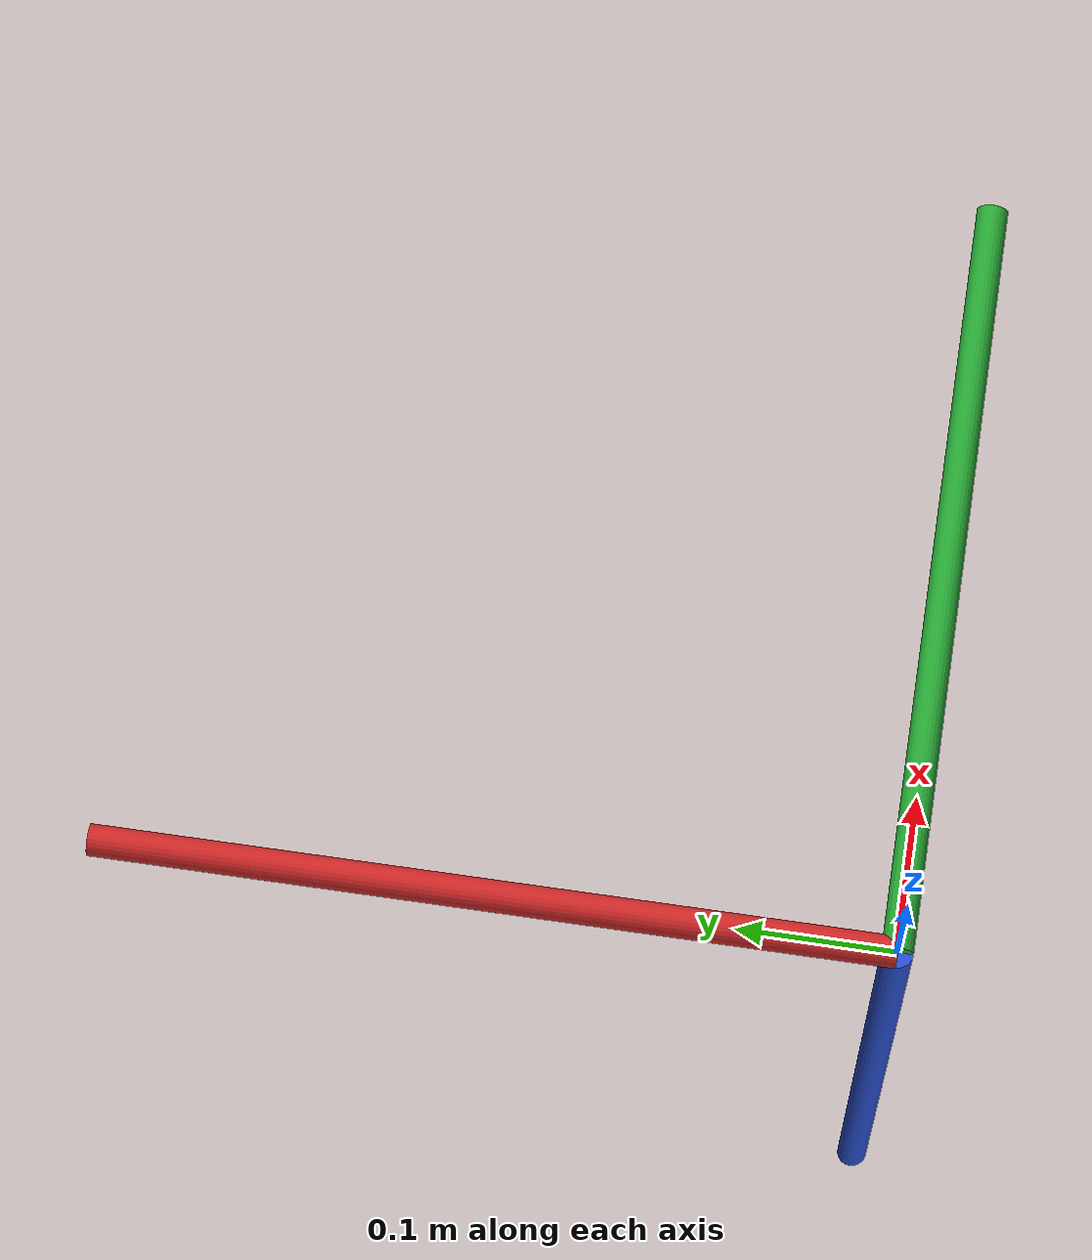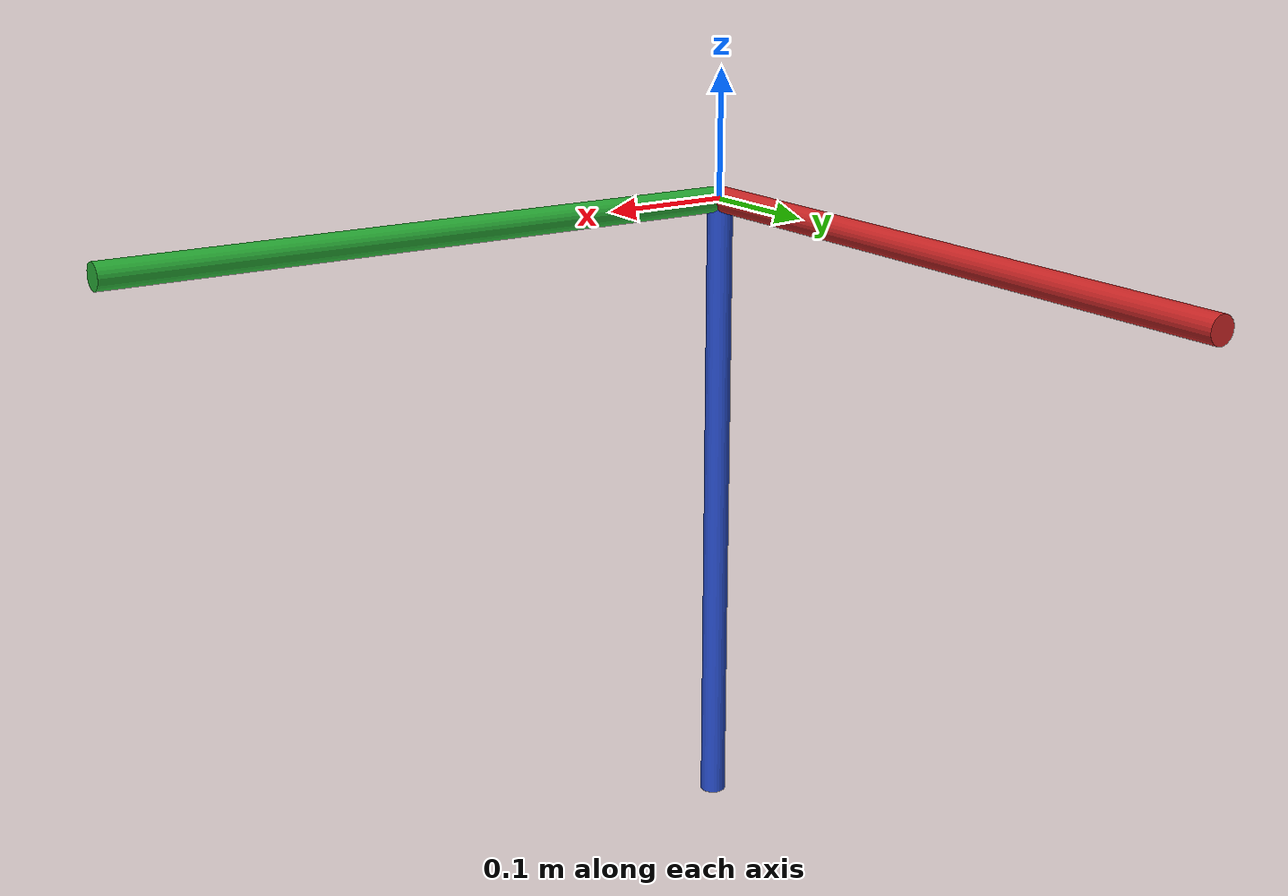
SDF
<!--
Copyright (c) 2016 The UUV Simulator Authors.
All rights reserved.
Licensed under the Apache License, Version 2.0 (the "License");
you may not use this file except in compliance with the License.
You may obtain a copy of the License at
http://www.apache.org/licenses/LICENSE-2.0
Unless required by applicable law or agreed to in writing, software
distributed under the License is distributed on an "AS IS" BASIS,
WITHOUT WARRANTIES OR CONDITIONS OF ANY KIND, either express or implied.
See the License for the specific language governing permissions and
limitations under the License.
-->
<?xml version='1.0'?>
<sdf version='1.5'>
    <model name="ned">

      <pose>0 0 0 3.14159265359 0 1.57079632679</pose>
      <static>true</static>

      <link name="N">
        <gravity>0</gravity>
        <pose>0 0 0 0 0 0</pose>
        <visual name="N_visual">
          <pose>0.25 0 0 0 1.57079632679 0</pose>
          <geometry>
            <cylinder>
              <radius>0.01</radius>
              <length>0.5</length>
            </cylinder>
          </geometry>
          <material>
            <script>
              <uri>file://media/materials/scripts/gazebo.material</uri>
              <name>Gazebo/Red</name>
            </script>
          </material>
        </visual>

      </link>

      <link name="E">
        <gravity>0</gravity>
        <pose>0 0.25 0 -1.57079632679 0 0</pose>
        <visual name="E_visual">
          <pose>0 0 0 0 0 0</pose>
          <geometry>
            <cylinder>
              <radius>0.01</radius>
              <length>0.5</length>
            </cylinder>
          </geometry>
          <material>
            <script>
              <uri>file://media/materials/scripts/gazebo.material</uri>
              <name>Gazebo/Green</name>
            </script>
          </material>
        </visual>
      </link>

      <link name="D">
        <gravity>0</gravity>
        <pose>0 0 0 0 0 0</pose>
        <visual name="D_visual">
          <pose>0 0 0.25 0 0 0</pose>
          <geometry>
            <cylinder>
              <radius>0.01</radius>
              <length>0.5</length>
            </cylinder>
          </geometry>
          <material>
            <script>
              <uri>file://media/materials/scripts/gazebo.material</uri>
              <name>Gazebo/Blue</name>
            </script>
          </material>
        </visual>
      </link>

    </model>
</sdf>
